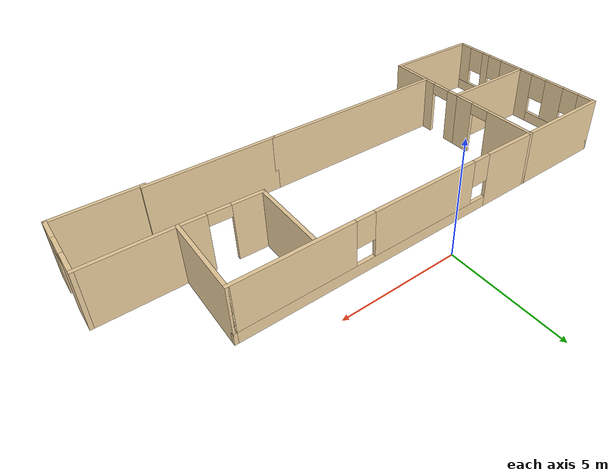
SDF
<?xml version='1.0'?>
<sdf version='1.7'>
  <model name='flat'>
    <pose>0.83 -4.6775 0 0 -0 0</pose>
    <link name='Wall_0'>
      <pose>-6.3 1.2975 0 0 -0 -1.5708</pose>
      <visual name='Wall_0_Visual_0'>
        <pose>-0.965676 0 1.25 0 -0 0</pose>
        <geometry>
          <box>
            <size>2.31865 0.15 2.5</size>
          </box>
        </geometry>
        <material>
          <script>
            <uri>file://media/materials/scripts/gazebo.material</uri>
            <name>Gazebo/Grey</name>
          </script>
          <ambient>0.921569 0.807843 0.615686 1</ambient>
        </material>
        <meta>
          <layer>0</layer>
        </meta>
      </visual>
      <collision name='Wall_0_Collision_0'>
        <geometry>
          <box>
            <size>2.31865 0.15 2.5</size>
          </box>
        </geometry>
        <pose>-0.965676 0 1.25 0 -0 0</pose>
      </collision>
      <visual name='Wall_0_Visual_1'>
        <pose>1.60932 0 1.25 0 -0 0</pose>
        <geometry>
          <box>
            <size>1.03135 0.15 2.5</size>
          </box>
        </geometry>
        <material>
          <script>
            <uri>file://media/materials/scripts/gazebo.material</uri>
            <name>Gazebo/Grey</name>
          </script>
          <ambient>0.921569 0.807843 0.615686 1</ambient>
        </material>
        <meta>
          <layer>0</layer>
        </meta>
      </visual>
      <collision name='Wall_0_Collision_1'>
        <geometry>
          <box>
            <size>1.03135 0.15 2.5</size>
          </box>
        </geometry>
        <pose>1.60932 0 1.25 0 -0 0</pose>
      </collision>
      <visual name='Wall_0_Visual_2'>
        <pose>0.643648 0 2.25 0 -0 0</pose>
        <geometry>
          <box>
            <size>0.9 0.15 0.5</size>
          </box>
        </geometry>
        <material>
          <script>
            <uri>file://media/materials/scripts/gazebo.material</uri>
            <name>Gazebo/Grey</name>
          </script>
          <ambient>0.921569 0.807843 0.615686 1</ambient>
        </material>
        <meta>
          <layer>0</layer>
        </meta>
      </visual>
      <collision name='Wall_0_Collision_2'>
        <geometry>
          <box>
            <size>0.9 0.15 0.5</size>
          </box>
        </geometry>
        <pose>0.643648 0 2.25 0 -0 0</pose>
      </collision>
    </link>
    <link name='Wall_10'>
      <pose>-10.65 -2.6775 0 0 -0 -1.5708</pose>
      <visual name='Wall_10_Visual_0'>
        <pose>-1.38949 0 1.25 0 -0 0</pose>
        <geometry>
          <box>
            <size>1.22101 0.15 2.5</size>
          </box>
        </geometry>
        <material>
          <script>
            <uri>file://media/materials/scripts/gazebo.material</uri>
            <name>Gazebo/Grey</name>
          </script>
          <ambient>0.921569 0.807843 0.615686 1</ambient>
        </material>
        <meta>
          <layer>0</layer>
        </meta>
      </visual>
      <collision name='Wall_10_Collision_0'>
        <geometry>
          <box>
            <size>1.22101 0.15 2.5</size>
          </box>
        </geometry>
        <pose>-1.38949 0 1.25 0 -0 0</pose>
      </collision>
      <visual name='Wall_10_Visual_1'>
        <pose>0.610508 0 0.25 0 -0 0</pose>
        <geometry>
          <box>
            <size>2.77899 0.15 0.5</size>
          </box>
        </geometry>
        <material>
          <script>
            <uri>file://media/materials/scripts/gazebo.material</uri>
            <name>Gazebo/Grey</name>
          </script>
          <ambient>0.921569 0.807843 0.615686 1</ambient>
        </material>
        <meta>
          <layer>0</layer>
        </meta>
      </visual>
      <collision name='Wall_10_Collision_1'>
        <geometry>
          <box>
            <size>2.77899 0.15 0.5</size>
          </box>
        </geometry>
        <pose>0.610508 0 0.25 0 -0 0</pose>
      </collision>
      <visual name='Wall_10_Visual_2'>
        <pose>0.229365 0 1.5 0 -0 0</pose>
        <geometry>
          <box>
            <size>0.4167 0.15 2</size>
          </box>
        </geometry>
        <material>
          <script>
            <uri>file://media/materials/scripts/gazebo.material</uri>
            <name>Gazebo/Grey</name>
          </script>
          <ambient>0.921569 0.807843 0.615686 1</ambient>
        </material>
        <meta>
          <layer>0</layer>
        </meta>
      </visual>
      <collision name='Wall_10_Collision_2'>
        <geometry>
          <box>
            <size>0.4167 0.15 2</size>
          </box>
        </geometry>
        <pose>0.229365 0 1.5 0 -0 0</pose>
      </collision>
      <visual name='Wall_10_Visual_3'>
        <pose>1.61886 0 1.5 0 -0 0</pose>
        <geometry>
          <box>
            <size>0.762285 0.15 2</size>
          </box>
        </geometry>
        <material>
          <script>
            <uri>file://media/materials/scripts/gazebo.material</uri>
            <name>Gazebo/Grey</name>
          </script>
          <ambient>0.921569 0.807843 0.615686 1</ambient>
        </material>
        <meta>
          <layer>0</layer>
        </meta>
      </visual>
      <collision name='Wall_10_Collision_3'>
        <geometry>
          <box>
            <size>0.762285 0.15 2</size>
          </box>
        </geometry>
        <pose>1.61886 0 1.5 0 -0 0</pose>
      </collision>
      <visual name='Wall_10_Visual_4'>
        <pose>-0.378985 0 1.9 0 -0 0</pose>
        <geometry>
          <box>
            <size>0.8 0.15 1.2</size>
          </box>
        </geometry>
        <material>
          <script>
            <uri>file://media/materials/scripts/gazebo.material</uri>
            <name>Gazebo/Grey</name>
          </script>
          <ambient>0.921569 0.807843 0.615686 1</ambient>
        </material>
        <meta>
          <layer>0</layer>
        </meta>
      </visual>
      <collision name='Wall_10_Collision_4'>
        <geometry>
          <box>
            <size>0.8 0.15 1.2</size>
          </box>
        </geometry>
        <pose>-0.378985 0 1.9 0 -0 0</pose>
      </collision>
      <visual name='Wall_10_Visual_5'>
        <pose>0.837715 0 1.9 0 -0 0</pose>
        <geometry>
          <box>
            <size>0.8 0.15 1.2</size>
          </box>
        </geometry>
        <material>
          <script>
            <uri>file://media/materials/scripts/gazebo.material</uri>
            <name>Gazebo/Grey</name>
          </script>
          <ambient>0.921569 0.807843 0.615686 1</ambient>
        </material>
        <meta>
          <layer>0</layer>
        </meta>
      </visual>
      <collision name='Wall_10_Collision_5'>
        <geometry>
          <box>
            <size>0.8 0.15 1.2</size>
          </box>
        </geometry>
        <pose>0.837715 0 1.9 0 -0 0</pose>
      </collision>
    </link>
    <link name='Wall_11'>
      <collision name='Wall_11_Collision'>
        <geometry>
          <box>
            <size>4.5 0.15 2.5</size>
          </box>
        </geometry>
        <pose>0 0 1.25 0 -0 0</pose>
      </collision>
      <visual name='Wall_11_Visual'>
        <pose>0 0 1.25 0 -0 0</pose>
        <geometry>
          <box>
            <size>4.5 0.15 2.5</size>
          </box>
        </geometry>
        <material>
          <script>
            <uri>file://media/materials/scripts/gazebo.material</uri>
            <name>Gazebo/Grey</name>
          </script>
          <ambient>0.921569 0.807843 0.615686 1</ambient>
        </material>
        <meta>
          <layer>0</layer>
        </meta>
      </visual>
      <pose>-8.475 -4.6025 0 0 -0 0</pose>
    </link>
    <link name='Wall_12'>
      <collision name='Wall_12_Collision'>
        <geometry>
          <box>
            <size>2 0.15 2.5</size>
          </box>
        </geometry>
        <pose>0 0 1.25 0 -0 0</pose>
      </collision>
      <visual name='Wall_12_Visual'>
        <pose>0 0 1.25 0 -0 0</pose>
        <geometry>
          <box>
            <size>2 0.15 2.5</size>
          </box>
        </geometry>
        <material>
          <script>
            <uri>file://media/materials/scripts/gazebo.material</uri>
            <name>Gazebo/Grey</name>
          </script>
          <ambient>0.921569 0.807843 0.615686 1</ambient>
        </material>
        <meta>
          <layer>0</layer>
        </meta>
      </visual>
      <pose>-6.3 -3.6775 0 0 -0 1.5708</pose>
    </link>
    <link name='Wall_13'>
      <collision name='Wall_13_Collision'>
        <geometry>
          <box>
            <size>8.5 0.15 2.5</size>
          </box>
        </geometry>
        <pose>0 0 1.25 0 -0 0</pose>
      </collision>
      <visual name='Wall_13_Visual'>
        <pose>0 0 1.25 0 -0 0</pose>
        <geometry>
          <box>
            <size>8.5 0.15 2.5</size>
          </box>
        </geometry>
        <material>
          <script>
            <uri>file://media/materials/scripts/gazebo.material</uri>
            <name>Gazebo/Grey</name>
          </script>
          <ambient>0.921569 0.807843 0.615686 1</ambient>
        </material>
        <meta>
          <layer>0</layer>
        </meta>
      </visual>
      <pose>-2.125 -2.7525 0 0 -0 0</pose>
    </link>
    <link name='Wall_14'>
      <collision name='Wall_14_Collision'>
        <geometry>
          <box>
            <size>5.5 0.15 2.5</size>
          </box>
        </geometry>
        <pose>0 0 1.25 0 -0 0</pose>
      </collision>
      <visual name='Wall_14_Visual'>
        <pose>0 0 1.25 0 -0 0</pose>
        <geometry>
          <box>
            <size>5.5 0.15 2.5</size>
          </box>
        </geometry>
        <material>
          <script>
            <uri>file://media/materials/scripts/gazebo.material</uri>
            <name>Gazebo/Grey</name>
          </script>
          <ambient>0.921569 0.807843 0.615686 1</ambient>
        </material>
        <meta>
          <layer>0</layer>
        </meta>
      </visual>
      <pose>4.725 -2.7525 0 0 -0 0</pose>
    </link>
    <link name='Wall_16'>
      <pose>-6.3 -1.7525 0 0 -0 -1.5708</pose>
      <visual name='Wall_16_Visual_0'>
        <pose>-0.778975 0 1.25 0 -0 0</pose>
        <geometry>
          <box>
            <size>0.59205 0.15 2.5</size>
          </box>
        </geometry>
        <material>
          <script>
            <uri>file://media/materials/scripts/gazebo.material</uri>
            <name>Gazebo/Grey</name>
          </script>
          <ambient>0.921569 0.807843 0.615686 1</ambient>
        </material>
        <meta>
          <layer>0</layer>
        </meta>
      </visual>
      <collision name='Wall_16_Collision_0'>
        <geometry>
          <box>
            <size>0.59205 0.15 2.5</size>
          </box>
        </geometry>
        <pose>-0.778975 0 1.25 0 -0 0</pose>
      </collision>
      <visual name='Wall_16_Visual_1'>
        <pose>0.746025 0 1.25 0 -0 0</pose>
        <geometry>
          <box>
            <size>0.65795 0.15 2.5</size>
          </box>
        </geometry>
        <material>
          <script>
            <uri>file://media/materials/scripts/gazebo.material</uri>
            <name>Gazebo/Grey</name>
          </script>
          <ambient>0.921569 0.807843 0.615686 1</ambient>
        </material>
        <meta>
          <layer>0</layer>
        </meta>
      </visual>
      <collision name='Wall_16_Collision_1'>
        <geometry>
          <box>
            <size>0.65795 0.15 2.5</size>
          </box>
        </geometry>
        <pose>0.746025 0 1.25 0 -0 0</pose>
      </collision>
      <visual name='Wall_16_Visual_2'>
        <pose>-0.03295 0 2.25 0 -0 0</pose>
        <geometry>
          <box>
            <size>0.9 0.15 0.5</size>
          </box>
        </geometry>
        <material>
          <script>
            <uri>file://media/materials/scripts/gazebo.material</uri>
            <name>Gazebo/Grey</name>
          </script>
          <ambient>0.921569 0.807843 0.615686 1</ambient>
        </material>
        <meta>
          <layer>0</layer>
        </meta>
      </visual>
      <collision name='Wall_16_Collision_2'>
        <geometry>
          <box>
            <size>0.9 0.15 0.5</size>
          </box>
        </geometry>
        <pose>-0.03295 0 2.25 0 -0 0</pose>
      </collision>
    </link>
    <link name='Wall_19'>
      <pose>-10.65 1.2975 0 0 -0 1.5708</pose>
      <visual name='Wall_19_Visual_0'>
        <pose>-1.70501 0 1.25 0 -0 0</pose>
        <geometry>
          <box>
            <size>0.839989 0.15 2.5</size>
          </box>
        </geometry>
        <material>
          <script>
            <uri>file://media/materials/scripts/gazebo.material</uri>
            <name>Gazebo/Grey</name>
          </script>
          <ambient>0.921569 0.807843 0.615686 1</ambient>
        </material>
        <meta>
          <layer>0</layer>
        </meta>
      </visual>
      <collision name='Wall_19_Collision_0'>
        <geometry>
          <box>
            <size>0.839989 0.15 2.5</size>
          </box>
        </geometry>
        <pose>-1.70501 0 1.25 0 -0 0</pose>
      </collision>
      <visual name='Wall_19_Visual_1'>
        <pose>0.419995 0 0.25 0 -0 0</pose>
        <geometry>
          <box>
            <size>3.41001 0.15 0.5</size>
          </box>
        </geometry>
        <material>
          <script>
            <uri>file://media/materials/scripts/gazebo.material</uri>
            <name>Gazebo/Grey</name>
          </script>
          <ambient>0.921569 0.807843 0.615686 1</ambient>
        </material>
        <meta>
          <layer>0</layer>
        </meta>
      </visual>
      <collision name='Wall_19_Collision_1'>
        <geometry>
          <box>
            <size>3.41001 0.15 0.5</size>
          </box>
        </geometry>
        <pose>0.419995 0 0.25 0 -0 0</pose>
      </collision>
      <visual name='Wall_19_Visual_2'>
        <pose>-1.4e-05 0 1.5 0 -0 0</pose>
        <geometry>
          <box>
            <size>0.969994 0.15 2</size>
          </box>
        </geometry>
        <material>
          <script>
            <uri>file://media/materials/scripts/gazebo.material</uri>
            <name>Gazebo/Grey</name>
          </script>
          <ambient>0.921569 0.807843 0.615686 1</ambient>
        </material>
        <meta>
          <layer>0</layer>
        </meta>
      </visual>
      <collision name='Wall_19_Collision_2'>
        <geometry>
          <box>
            <size>0.969994 0.15 2</size>
          </box>
        </geometry>
        <pose>-1.4e-05 0 1.5 0 -0 0</pose>
      </collision>
      <visual name='Wall_19_Visual_3'>
        <pose>1.70499 0 1.5 0 -0 0</pose>
        <geometry>
          <box>
            <size>0.840016 0.15 2</size>
          </box>
        </geometry>
        <material>
          <script>
            <uri>file://media/materials/scripts/gazebo.material</uri>
            <name>Gazebo/Grey</name>
          </script>
          <ambient>0.921569 0.807843 0.615686 1</ambient>
        </material>
        <meta>
          <layer>0</layer>
        </meta>
      </visual>
      <collision name='Wall_19_Collision_3'>
        <geometry>
          <box>
            <size>0.840016 0.15 2</size>
          </box>
        </geometry>
        <pose>1.70499 0 1.5 0 -0 0</pose>
      </collision>
      <visual name='Wall_19_Visual_4'>
        <pose>-0.885011 0 1.9 0 -0 0</pose>
        <geometry>
          <box>
            <size>0.8 0.15 1.2</size>
          </box>
        </geometry>
        <material>
          <script>
            <uri>file://media/materials/scripts/gazebo.material</uri>
            <name>Gazebo/Grey</name>
          </script>
          <ambient>0.921569 0.807843 0.615686 1</ambient>
        </material>
        <meta>
          <layer>0</layer>
        </meta>
      </visual>
      <collision name='Wall_19_Collision_4'>
        <geometry>
          <box>
            <size>0.8 0.15 1.2</size>
          </box>
        </geometry>
        <pose>-0.885011 0 1.9 0 -0 0</pose>
      </collision>
      <visual name='Wall_19_Visual_5'>
        <pose>0.884984 0 1.9 0 -0 0</pose>
        <geometry>
          <box>
            <size>0.8 0.15 1.2</size>
          </box>
        </geometry>
        <material>
          <script>
            <uri>file://media/materials/scripts/gazebo.material</uri>
            <name>Gazebo/Grey</name>
          </script>
          <ambient>0.921569 0.807843 0.615686 1</ambient>
        </material>
        <meta>
          <layer>0</layer>
        </meta>
      </visual>
      <collision name='Wall_19_Collision_5'>
        <geometry>
          <box>
            <size>0.8 0.15 1.2</size>
          </box>
        </geometry>
        <pose>0.884984 0 1.9 0 -0 0</pose>
      </collision>
    </link>
    <link name='Wall_2'>
      <pose>0.5 3.3475 0 0 -0 0</pose>
      <visual name='Wall_2_Visual_0'>
        <pose>-5.60028 0 1.25 0 -0 0</pose>
        <geometry>
          <box>
            <size>2.54945 0.15 2.5</size>
          </box>
        </geometry>
        <material>
          <script>
            <uri>file://media/materials/scripts/gazebo.material</uri>
            <name>Gazebo/Grey</name>
          </script>
          <ambient>0.921569 0.807843 0.615686 1</ambient>
        </material>
        <meta>
          <layer>0</layer>
        </meta>
      </visual>
      <collision name='Wall_2_Collision_0'>
        <geometry>
          <box>
            <size>2.54945 0.15 2.5</size>
          </box>
        </geometry>
        <pose>-5.60028 0 1.25 0 -0 0</pose>
      </collision>
      <visual name='Wall_2_Visual_1'>
        <pose>1.27472 0 0.25 0 -0 0</pose>
        <geometry>
          <box>
            <size>11.2006 0.15 0.5</size>
          </box>
        </geometry>
        <material>
          <script>
            <uri>file://media/materials/scripts/gazebo.material</uri>
            <name>Gazebo/Grey</name>
          </script>
          <ambient>0.921569 0.807843 0.615686 1</ambient>
        </material>
        <meta>
          <layer>0</layer>
        </meta>
      </visual>
      <collision name='Wall_2_Collision_1'>
        <geometry>
          <box>
            <size>11.2006 0.15 0.5</size>
          </box>
        </geometry>
        <pose>1.27472 0 0.25 0 -0 0</pose>
      </collision>
      <visual name='Wall_2_Visual_2'>
        <pose>-1.12185 0 1.5 0 -0 0</pose>
        <geometry>
          <box>
            <size>4.8074 0.15 2</size>
          </box>
        </geometry>
        <material>
          <script>
            <uri>file://media/materials/scripts/gazebo.material</uri>
            <name>Gazebo/Grey</name>
          </script>
          <ambient>0.921569 0.807843 0.615686 1</ambient>
        </material>
        <meta>
          <layer>0</layer>
        </meta>
      </visual>
      <collision name='Wall_2_Collision_2'>
        <geometry>
          <box>
            <size>4.8074 0.15 2</size>
          </box>
        </geometry>
        <pose>-1.12185 0 1.5 0 -0 0</pose>
      </collision>
      <visual name='Wall_2_Visual_3'>
        <pose>4.47842 0 1.5 0 -0 0</pose>
        <geometry>
          <box>
            <size>4.79315 0.15 2</size>
          </box>
        </geometry>
        <material>
          <script>
            <uri>file://media/materials/scripts/gazebo.material</uri>
            <name>Gazebo/Grey</name>
          </script>
          <ambient>0.921569 0.807843 0.615686 1</ambient>
        </material>
        <meta>
          <layer>0</layer>
        </meta>
      </visual>
      <collision name='Wall_2_Collision_3'>
        <geometry>
          <box>
            <size>4.79315 0.15 2</size>
          </box>
        </geometry>
        <pose>4.47842 0 1.5 0 -0 0</pose>
      </collision>
      <visual name='Wall_2_Visual_4'>
        <pose>-3.92555 0 1.9 0 -0 0</pose>
        <geometry>
          <box>
            <size>0.8 0.15 1.2</size>
          </box>
        </geometry>
        <material>
          <script>
            <uri>file://media/materials/scripts/gazebo.material</uri>
            <name>Gazebo/Grey</name>
          </script>
          <ambient>0.921569 0.807843 0.615686 1</ambient>
        </material>
        <meta>
          <layer>0</layer>
        </meta>
      </visual>
      <collision name='Wall_2_Collision_4'>
        <geometry>
          <box>
            <size>0.8 0.15 1.2</size>
          </box>
        </geometry>
        <pose>-3.92555 0 1.9 0 -0 0</pose>
      </collision>
      <visual name='Wall_2_Visual_5'>
        <pose>1.68185 0 1.9 0 -0 0</pose>
        <geometry>
          <box>
            <size>0.8 0.15 1.2</size>
          </box>
        </geometry>
        <material>
          <script>
            <uri>file://media/materials/scripts/gazebo.material</uri>
            <name>Gazebo/Grey</name>
          </script>
          <ambient>0.921569 0.807843 0.615686 1</ambient>
        </material>
        <meta>
          <layer>0</layer>
        </meta>
      </visual>
      <collision name='Wall_2_Collision_5'>
        <geometry>
          <box>
            <size>0.8 0.15 1.2</size>
          </box>
        </geometry>
        <pose>1.68185 0 1.9 0 -0 0</pose>
      </collision>
    </link>
    <link name='Wall_20'>
      <collision name='Wall_20_Collision'>
        <geometry>
          <box>
            <size>4.5 0.15 2.5</size>
          </box>
        </geometry>
        <pose>0 0 1.25 0 -0 0</pose>
      </collision>
      <visual name='Wall_20_Visual'>
        <pose>0 0 1.25 0 -0 0</pose>
        <geometry>
          <box>
            <size>4.5 0.15 2.5</size>
          </box>
        </geometry>
        <material>
          <script>
            <uri>file://media/materials/scripts/gazebo.material</uri>
            <name>Gazebo/Grey</name>
          </script>
          <ambient>0.921569 0.807843 0.615686 1</ambient>
        </material>
        <meta>
          <layer>0</layer>
        </meta>
      </visual>
      <pose>-8.475 3.3475 0 0 -0 0</pose>
    </link>
    <link name='Wall_23'>
      <pose>5.72602 0.038513 0 0 -0 -0.026051</pose>
      <visual name='Wall_23_Visual_0'>
        <pose>-0.992678 0 1.25 0 -0 0</pose>
        <geometry>
          <box>
            <size>1.31368 0.15 2.5</size>
          </box>
        </geometry>
        <material>
          <script>
            <uri>file://media/materials/scripts/gazebo.material</uri>
            <name>Gazebo/Grey</name>
          </script>
          <ambient>0.921569 0.807843 0.615686 1</ambient>
        </material>
        <meta>
          <layer>0</layer>
        </meta>
      </visual>
      <collision name='Wall_23_Collision_0'>
        <geometry>
          <box>
            <size>1.31368 0.15 2.5</size>
          </box>
        </geometry>
        <pose>-0.992678 0 1.25 0 -0 0</pose>
      </collision>
      <visual name='Wall_23_Visual_1'>
        <pose>1.10684 0 1.25 0 -0 0</pose>
        <geometry>
          <box>
            <size>1.08536 0.15 2.5</size>
          </box>
        </geometry>
        <material>
          <script>
            <uri>file://media/materials/scripts/gazebo.material</uri>
            <name>Gazebo/Grey</name>
          </script>
          <ambient>0.921569 0.807843 0.615686 1</ambient>
        </material>
        <meta>
          <layer>0</layer>
        </meta>
      </visual>
      <collision name='Wall_23_Collision_1'>
        <geometry>
          <box>
            <size>1.08536 0.15 2.5</size>
          </box>
        </geometry>
        <pose>1.10684 0 1.25 0 -0 0</pose>
      </collision>
      <visual name='Wall_23_Visual_2'>
        <pose>0.11416 0 2.25 0 -0 0</pose>
        <geometry>
          <box>
            <size>0.9 0.15 0.5</size>
          </box>
        </geometry>
        <material>
          <script>
            <uri>file://media/materials/scripts/gazebo.material</uri>
            <name>Gazebo/Grey</name>
          </script>
          <ambient>0.921569 0.807843 0.615686 1</ambient>
        </material>
        <meta>
          <layer>0</layer>
        </meta>
      </visual>
      <collision name='Wall_23_Collision_2'>
        <geometry>
          <box>
            <size>0.9 0.15 0.5</size>
          </box>
        </geometry>
        <pose>0.11416 0 2.25 0 -0 0</pose>
      </collision>
    </link>
    <link name='Wall_25'>
      <collision name='Wall_25_Collision'>
        <geometry>
          <box>
            <size>3.25 0.15 2.5</size>
          </box>
        </geometry>
        <pose>0 0 1.25 0 -0 0</pose>
      </collision>
      <visual name='Wall_25_Visual'>
        <pose>0 0 1.25 0 -0 0</pose>
        <geometry>
          <box>
            <size>3.25 0.15 2.5</size>
          </box>
        </geometry>
        <material>
          <script>
            <uri>file://media/materials/scripts/gazebo.material</uri>
            <name>Gazebo/Grey</name>
          </script>
          <ambient>0.921569 0.807843 0.615686 1</ambient>
        </material>
        <meta>
          <layer>0</layer>
        </meta>
      </visual>
      <pose>4.15203 1.62952 0 0 -0 1.5708</pose>
    </link>
    <link name='Wall_4'>
      <collision name='Wall_4_Collision'>
        <geometry>
          <box>
            <size>3.5 0.15 2.5</size>
          </box>
        </geometry>
        <pose>0 0 1.25 0 -0 0</pose>
      </collision>
      <visual name='Wall_4_Visual'>
        <pose>0 0 1.25 0 -0 0</pose>
        <geometry>
          <box>
            <size>3.5 0.15 2.5</size>
          </box>
        </geometry>
        <material>
          <script>
            <uri>file://media/materials/scripts/gazebo.material</uri>
            <name>Gazebo/Grey</name>
          </script>
          <ambient>0.921569 0.807843 0.615686 1</ambient>
        </material>
        <meta>
          <layer>0</layer>
        </meta>
      </visual>
      <pose>7.3 1.6725 0 0 -0 -1.5708</pose>
    </link>
    <link name='Wall_5'>
      <collision name='Wall_5_Collision'>
        <geometry>
          <box>
            <size>3.5 0.15 2.5</size>
          </box>
        </geometry>
        <pose>0 0 1.25 0 -0 0</pose>
      </collision>
      <visual name='Wall_5_Visual'>
        <pose>0 0 1.25 0 -0 0</pose>
        <geometry>
          <box>
            <size>3.5 0.15 2.5</size>
          </box>
        </geometry>
        <material>
          <script>
            <uri>file://media/materials/scripts/gazebo.material</uri>
            <name>Gazebo/Grey</name>
          </script>
          <ambient>0.921569 0.807843 0.615686 1</ambient>
        </material>
        <meta>
          <layer>0</layer>
        </meta>
      </visual>
      <pose>8.975 -0.0025 0 0 -0 0</pose>
    </link>
    <link name='Wall_6'>
      <pose>10.65 -1.4275 0 0 -0 -1.5708</pose>
      <visual name='Wall_6_Visual_0'>
        <pose>-0.949657 0 1.25 0 -0 0</pose>
        <geometry>
          <box>
            <size>1.10069 0.15 2.5</size>
          </box>
        </geometry>
        <material>
          <script>
            <uri>file://media/materials/scripts/gazebo.material</uri>
            <name>Gazebo/Grey</name>
          </script>
          <ambient>0.921569 0.807843 0.615686 1</ambient>
        </material>
        <meta>
          <layer>0</layer>
        </meta>
      </visual>
      <collision name='Wall_6_Collision_0'>
        <geometry>
          <box>
            <size>1.10069 0.15 2.5</size>
          </box>
        </geometry>
        <pose>-0.949657 0 1.25 0 -0 0</pose>
      </collision>
      <visual name='Wall_6_Visual_1'>
        <pose>1.00034 0 1.25 0 -0 0</pose>
        <geometry>
          <box>
            <size>0.999314 0.15 2.5</size>
          </box>
        </geometry>
        <material>
          <script>
            <uri>file://media/materials/scripts/gazebo.material</uri>
            <name>Gazebo/Grey</name>
          </script>
          <ambient>0.921569 0.807843 0.615686 1</ambient>
        </material>
        <meta>
          <layer>0</layer>
        </meta>
      </visual>
      <collision name='Wall_6_Collision_1'>
        <geometry>
          <box>
            <size>0.999314 0.15 2.5</size>
          </box>
        </geometry>
        <pose>1.00034 0 1.25 0 -0 0</pose>
      </collision>
      <visual name='Wall_6_Visual_2'>
        <pose>0.050686 0 2.25 0 -0 0</pose>
        <geometry>
          <box>
            <size>0.9 0.15 0.5</size>
          </box>
        </geometry>
        <material>
          <script>
            <uri>file://media/materials/scripts/gazebo.material</uri>
            <name>Gazebo/Grey</name>
          </script>
          <ambient>0.921569 0.807843 0.615686 1</ambient>
        </material>
        <meta>
          <layer>0</layer>
        </meta>
      </visual>
      <collision name='Wall_6_Collision_2'>
        <geometry>
          <box>
            <size>0.9 0.15 0.5</size>
          </box>
        </geometry>
        <pose>0.050686 0 2.25 0 -0 0</pose>
      </collision>
    </link>
    <link name='Wall_7'>
      <collision name='Wall_7_Collision'>
        <geometry>
          <box>
            <size>3.5 0.15 2.5</size>
          </box>
        </geometry>
        <pose>0 0 1.25 0 -0 0</pose>
      </collision>
      <visual name='Wall_7_Visual'>
        <pose>0 0 1.25 0 -0 0</pose>
        <geometry>
          <box>
            <size>3.5 0.15 2.5</size>
          </box>
        </geometry>
        <material>
          <script>
            <uri>file://media/materials/scripts/gazebo.material</uri>
            <name>Gazebo/Grey</name>
          </script>
          <ambient>0.921569 0.807843 0.615686 1</ambient>
        </material>
        <meta>
          <layer>0</layer>
        </meta>
      </visual>
      <pose>8.975 -2.8525 0 0 -0 3.14159</pose>
    </link>
    <link name='Wall_9'>
      <collision name='Wall_9_Collision'>
        <geometry>
          <box>
            <size>4.5 0.15 2.5</size>
          </box>
        </geometry>
        <pose>0 0 1.25 0 -0 0</pose>
      </collision>
      <visual name='Wall_9_Visual'>
        <pose>0 0 1.25 0 -0 0</pose>
        <geometry>
          <box>
            <size>4.5 0.15 2.5</size>
          </box>
        </geometry>
        <material>
          <script>
            <uri>file://media/materials/scripts/gazebo.material</uri>
            <name>Gazebo/Grey</name>
          </script>
          <ambient>0.921569 0.807843 0.615686 1</ambient>
        </material>
        <meta>
          <layer>0</layer>
        </meta>
      </visual>
      <pose>-8.475 -0.7525 0 0 -0 3.14159</pose>
    </link>
    <static>1</static>
  </model>
</sdf>
